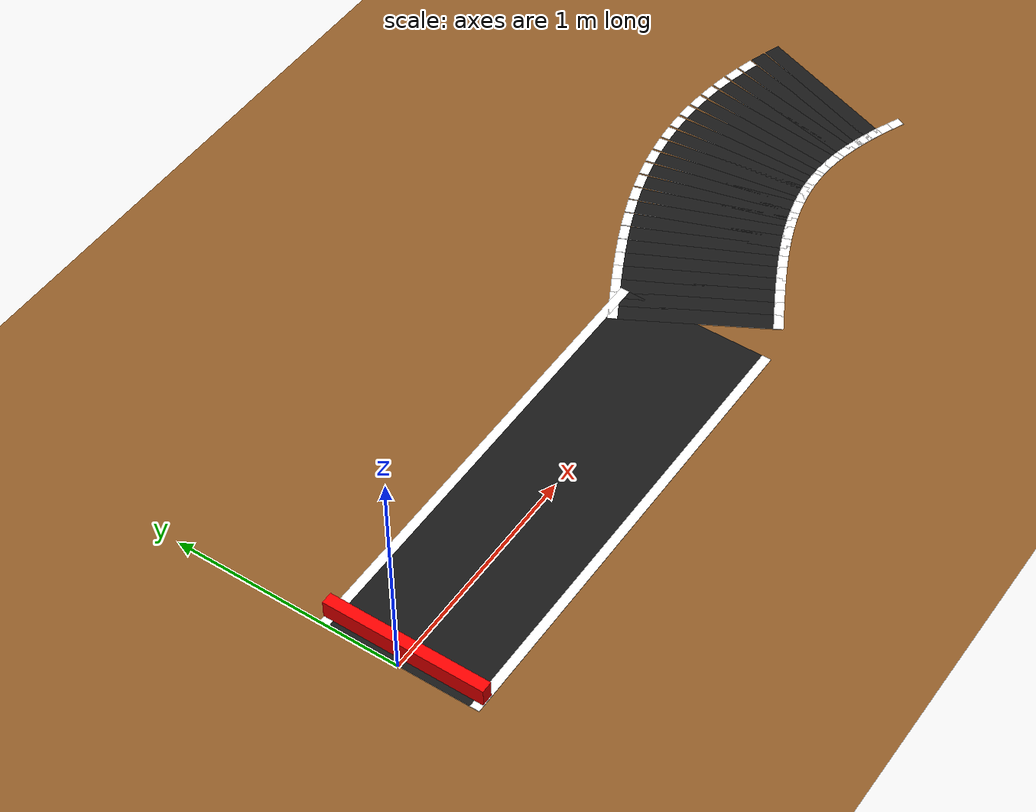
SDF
<sdf version="1.9">
 <world name="lka_world">
  <model name="ground_plane">
   <static>true</static>
   <link name="link">
    <collision name="col">
     <geometry><plane><normal>0 0 1</normal><size>100 100</size></plane></geometry>
     <surface><friction><ode><mu>0.8</mu><mu2>0.8</mu2></ode></friction></surface>
    </collision>
    <visual name="vis">
     <geometry><plane><normal>0 0 1</normal><size>100 100</size></plane></geometry>
     <material><ambient>0.45 0.28 0.10 1</ambient><diffuse>0.55 0.35 0.15 1</diffuse></material>
    </visual>
   </link>
  </model>
  <model name="s1_road">
   <static>true</static>
   <pose>1.000000 0.000000 0.001000 0.000000 0.000000 0.000000</pose>
   <link name="link">
    <collision name="col">
     <geometry><box><size>2.000000 0.700000 0.002000</size></box></geometry>
     <surface><friction><ode><mu>1.0</mu><mu2>1.0</mu2></ode></friction></surface>
    </collision>
    <visual name="vis">
     <geometry><box><size>2.000000 0.700000 0.002000</size></box></geometry>
     <material><ambient>0.06 0.06 0.06 1</ambient><diffuse>0.09 0.09 0.09 1</diffuse></material>
    </visual>
   </link>
  </model>
  <model name="s1_left">
   <static>true</static>
   <pose>1.000000 0.330000 0.002000 0.000000 0.000000 0.000000</pose>
   <link name="link">
    <collision name="col">
     <geometry><box><size>2.000000 0.040000 0.003000</size></box></geometry>
     <surface><friction><ode><mu>1.0</mu><mu2>1.0</mu2></ode></friction></surface>
    </collision>
    <visual name="vis">
     <geometry><box><size>2.000000 0.040000 0.003000</size></box></geometry>
     <material><ambient>1.0 1.0 1.0 1</ambient><diffuse>1.0 1.0 1.0 1</diffuse></material>
    </visual>
   </link>
  </model>
  <model name="s1_right">
   <static>true</static>
   <pose>1.000000 -0.330000 0.002000 0.000000 0.000000 0.000000</pose>
   <link name="link">
    <collision name="col">
     <geometry><box><size>2.000000 0.040000 0.003000</size></box></geometry>
     <surface><friction><ode><mu>1.0</mu><mu2>1.0</mu2></ode></friction></surface>
    </collision>
    <visual name="vis">
     <geometry><box><size>2.000000 0.040000 0.003000</size></box></geometry>
     <material><ambient>1.0 1.0 1.0 1</ambient><diffuse>1.0 1.0 1.0 1</diffuse></material>
    </visual>
   </link>
  </model>
  <model name="c1_road_0">
   <static>true</static>
   <pose>2.031250 0.017174 0.001000 0.000000 0.000000 0.502158</pose>
   <link name="link">
    <collision name="col">
     <geometry><box><size>0.077296 0.700000 0.002000</size></box></geometry>
     <surface><friction><ode><mu>1.0</mu><mu2>1.0</mu2></ode></friction></surface>
    </collision>
    <visual name="vis">
     <geometry><box><size>0.077296 0.700000 0.002000</size></box></geometry>
     <material><ambient>0.06 0.06 0.06 1</ambient><diffuse>0.09 0.09 0.09 1</diffuse></material>
    </visual>
   </link>
  </model>
  <model name="c1_left_0">
   <static>true</static>
   <pose>1.872415 0.306434 0.002000 0.000000 0.000000 0.502158</pose>
   <link name="link">
    <collision name="col">
     <geometry><box><size>0.077296 0.040000 0.003000</size></box></geometry>
     <surface><friction><ode><mu>1.0</mu><mu2>1.0</mu2></ode></friction></surface>
    </collision>
    <visual name="vis">
     <geometry><box><size>0.077296 0.040000 0.003000</size></box></geometry>
     <material><ambient>1.0 1.0 1.0 1</ambient><diffuse>1.0 1.0 1.0 1</diffuse></material>
    </visual>
   </link>
  </model>
  <model name="c1_right_0">
   <static>true</static>
   <pose>2.190085 -0.272086 0.002000 0.000000 0.000000 0.502158</pose>
   <link name="link">
    <collision name="col">
     <geometry><box><size>0.077296 0.040000 0.003000</size></box></geometry>
     <surface><friction><ode><mu>1.0</mu><mu2>1.0</mu2></ode></friction></surface>
    </collision>
    <visual name="vis">
     <geometry><box><size>0.077296 0.040000 0.003000</size></box></geometry>
     <material><ambient>1.0 1.0 1.0 1</ambient><diffuse>1.0 1.0 1.0 1</diffuse></material>
    </visual>
   </link>
  </model>
  <model name="c1_road_1">
   <static>true</static>
   <pose>2.093750 0.051356 0.001000 0.000000 0.000000 0.498086</pose>
   <link name="link">
    <collision name="col">
     <geometry><box><size>0.077138 0.700000 0.002000</size></box></geometry>
     <surface><friction><ode><mu>1.0</mu><mu2>1.0</mu2></ode></friction></surface>
    </collision>
    <visual name="vis">
     <geometry><box><size>0.077138 0.700000 0.002000</size></box></geometry>
     <material><ambient>0.06 0.06 0.06 1</ambient><diffuse>0.09 0.09 0.09 1</diffuse></material>
    </visual>
   </link>
  </model>
  <model name="c1_left_1">
   <static>true</static>
   <pose>1.936094 0.341260 0.002000 0.000000 0.000000 0.498086</pose>
   <link name="link">
    <collision name="col">
     <geometry><box><size>0.077138 0.040000 0.003000</size></box></geometry>
     <surface><friction><ode><mu>1.0</mu><mu2>1.0</mu2></ode></friction></surface>
    </collision>
    <visual name="vis">
     <geometry><box><size>0.077138 0.040000 0.003000</size></box></geometry>
     <material><ambient>1.0 1.0 1.0 1</ambient><diffuse>1.0 1.0 1.0 1</diffuse></material>
    </visual>
   </link>
  </model>
  <model name="c1_right_1">
   <static>true</static>
   <pose>2.251406 -0.238549 0.002000 0.000000 0.000000 0.498086</pose>
   <link name="link">
    <collision name="col">
     <geometry><box><size>0.077138 0.040000 0.003000</size></box></geometry>
     <surface><friction><ode><mu>1.0</mu><mu2>1.0</mu2></ode></friction></surface>
    </collision>
    <visual name="vis">
     <geometry><box><size>0.077138 0.040000 0.003000</size></box></geometry>
     <material><ambient>1.0 1.0 1.0 1</ambient><diffuse>1.0 1.0 1.0 1</diffuse></material>
    </visual>
   </link>
  </model>
  <model name="c1_road_2">
   <static>true</static>
   <pose>2.156250 0.085043 0.001000 0.000000 0.000000 0.489927</pose>
   <link name="link">
    <collision name="col">
     <geometry><box><size>0.076826 0.700000 0.002000</size></box></geometry>
     <surface><friction><ode><mu>1.0</mu><mu2>1.0</mu2></ode></friction></surface>
    </collision>
    <visual name="vis">
     <geometry><box><size>0.076826 0.700000 0.002000</size></box></geometry>
     <material><ambient>0.06 0.06 0.06 1</ambient><diffuse>0.09 0.09 0.09 1</diffuse></material>
    </visual>
   </link>
  </model>
  <model name="c1_left_2">
   <static>true</static>
   <pose>2.000965 0.376224 0.002000 0.000000 0.000000 0.489927</pose>
   <link name="link">
    <collision name="col">
     <geometry><box><size>0.076826 0.040000 0.003000</size></box></geometry>
     <surface><friction><ode><mu>1.0</mu><mu2>1.0</mu2></ode></friction></surface>
    </collision>
    <visual name="vis">
     <geometry><box><size>0.076826 0.040000 0.003000</size></box></geometry>
     <material><ambient>1.0 1.0 1.0 1</ambient><diffuse>1.0 1.0 1.0 1</diffuse></material>
    </visual>
   </link>
  </model>
  <model name="c1_right_2">
   <static>true</static>
   <pose>2.311535 -0.206138 0.002000 0.000000 0.000000 0.489927</pose>
   <link name="link">
    <collision name="col">
     <geometry><box><size>0.076826 0.040000 0.003000</size></box></geometry>
     <surface><friction><ode><mu>1.0</mu><mu2>1.0</mu2></ode></friction></surface>
    </collision>
    <visual name="vis">
     <geometry><box><size>0.076826 0.040000 0.003000</size></box></geometry>
     <material><ambient>1.0 1.0 1.0 1</ambient><diffuse>1.0 1.0 1.0 1</diffuse></material>
    </visual>
   </link>
  </model>
  <model name="c1_road_3">
   <static>true</static>
   <pose>2.218750 0.117911 0.001000 0.000000 0.000000 0.477654</pose>
   <link name="link">
    <collision name="col">
     <geometry><box><size>0.076371 0.700000 0.002000</size></box></geometry>
     <surface><friction><ode><mu>1.0</mu><mu2>1.0</mu2></ode></friction></surface>
    </collision>
    <visual name="vis">
     <geometry><box><size>0.076371 0.700000 0.002000</size></box></geometry>
     <material><ambient>0.06 0.06 0.06 1</ambient><diffuse>0.09 0.09 0.09 1</diffuse></material>
    </visual>
   </link>
  </model>
  <model name="c1_left_3">
   <static>true</static>
   <pose>2.067050 0.410976 0.002000 0.000000 0.000000 0.477654</pose>
   <link name="link">
    <collision name="col">
     <geometry><box><size>0.076371 0.040000 0.003000</size></box></geometry>
     <surface><friction><ode><mu>1.0</mu><mu2>1.0</mu2></ode></friction></surface>
    </collision>
    <visual name="vis">
     <geometry><box><size>0.076371 0.040000 0.003000</size></box></geometry>
     <material><ambient>1.0 1.0 1.0 1</ambient><diffuse>1.0 1.0 1.0 1</diffuse></material>
    </visual>
   </link>
  </model>
  <model name="c1_right_3">
   <static>true</static>
   <pose>2.370450 -0.175154 0.002000 0.000000 0.000000 0.477654</pose>
   <link name="link">
    <collision name="col">
     <geometry><box><size>0.076371 0.040000 0.003000</size></box></geometry>
     <surface><friction><ode><mu>1.0</mu><mu2>1.0</mu2></ode></friction></surface>
    </collision>
    <visual name="vis">
     <geometry><box><size>0.076371 0.040000 0.003000</size></box></geometry>
     <material><ambient>1.0 1.0 1.0 1</ambient><diffuse>1.0 1.0 1.0 1</diffuse></material>
    </visual>
   </link>
  </model>
  <model name="c1_road_4">
   <static>true</static>
   <pose>2.281250 0.149644 0.001000 0.000000 0.000000 0.461234</pose>
   <link name="link">
    <collision name="col">
     <geometry><box><size>0.075788 0.700000 0.002000</size></box></geometry>
     <surface><friction><ode><mu>1.0</mu><mu2>1.0</mu2></ode></friction></surface>
    </collision>
    <visual name="vis">
     <geometry><box><size>0.075788 0.700000 0.002000</size></box></geometry>
     <material><ambient>0.06 0.06 0.06 1</ambient><diffuse>0.09 0.09 0.09 1</diffuse></material>
    </visual>
   </link>
  </model>
  <model name="c1_left_4">
   <static>true</static>
   <pose>2.134382 0.445161 0.002000 0.000000 0.000000 0.461234</pose>
   <link name="link">
    <collision name="col">
     <geometry><box><size>0.075788 0.040000 0.003000</size></box></geometry>
     <surface><friction><ode><mu>1.0</mu><mu2>1.0</mu2></ode></friction></surface>
    </collision>
    <visual name="vis">
     <geometry><box><size>0.075788 0.040000 0.003000</size></box></geometry>
     <material><ambient>1.0 1.0 1.0 1</ambient><diffuse>1.0 1.0 1.0 1</diffuse></material>
    </visual>
   </link>
  </model>
  <model name="c1_right_4">
   <static>true</static>
   <pose>2.428118 -0.145872 0.002000 0.000000 0.000000 0.461234</pose>
   <link name="link">
    <collision name="col">
     <geometry><box><size>0.075788 0.040000 0.003000</size></box></geometry>
     <surface><friction><ode><mu>1.0</mu><mu2>1.0</mu2></ode></friction></surface>
    </collision>
    <visual name="vis">
     <geometry><box><size>0.075788 0.040000 0.003000</size></box></geometry>
     <material><ambient>1.0 1.0 1.0 1</ambient><diffuse>1.0 1.0 1.0 1</diffuse></material>
    </visual>
   </link>
  </model>
  <model name="c1_road_5">
   <static>true</static>
   <pose>2.343750 0.179936 0.001000 0.000000 0.000000 0.440632</pose>
   <link name="link">
    <collision name="col">
     <geometry><box><size>0.075095 0.700000 0.002000</size></box></geometry>
     <surface><friction><ode><mu>1.0</mu><mu2>1.0</mu2></ode></friction></surface>
    </collision>
    <visual name="vis">
     <geometry><box><size>0.075095 0.700000 0.002000</size></box></geometry>
     <material><ambient>0.06 0.06 0.06 1</ambient><diffuse>0.09 0.09 0.09 1</diffuse></material>
    </visual>
   </link>
  </model>
  <model name="c1_left_5">
   <static>true</static>
   <pose>2.203001 0.478415 0.002000 0.000000 0.000000 0.440632</pose>
   <link name="link">
    <collision name="col">
     <geometry><box><size>0.075095 0.040000 0.003000</size></box></geometry>
     <surface><friction><ode><mu>1.0</mu><mu2>1.0</mu2></ode></friction></surface>
    </collision>
    <visual name="vis">
     <geometry><box><size>0.075095 0.040000 0.003000</size></box></geometry>
     <material><ambient>1.0 1.0 1.0 1</ambient><diffuse>1.0 1.0 1.0 1</diffuse></material>
    </visual>
   </link>
  </model>
  <model name="c1_right_5">
   <static>true</static>
   <pose>2.484499 -0.118543 0.002000 0.000000 0.000000 0.440632</pose>
   <link name="link">
    <collision name="col">
     <geometry><box><size>0.075095 0.040000 0.003000</size></box></geometry>
     <surface><friction><ode><mu>1.0</mu><mu2>1.0</mu2></ode></friction></surface>
    </collision>
    <visual name="vis">
     <geometry><box><size>0.075095 0.040000 0.003000</size></box></geometry>
     <material><ambient>1.0 1.0 1.0 1</ambient><diffuse>1.0 1.0 1.0 1</diffuse></material>
    </visual>
   </link>
  </model>
  <model name="c1_road_6">
   <static>true</static>
   <pose>2.406250 0.208495 0.001000 0.000000 0.000000 0.415829</pose>
   <link name="link">
    <collision name="col">
     <geometry><box><size>0.074318 0.700000 0.002000</size></box></geometry>
     <surface><friction><ode><mu>1.0</mu><mu2>1.0</mu2></ode></friction></surface>
    </collision>
    <visual name="vis">
     <geometry><box><size>0.074318 0.700000 0.002000</size></box></geometry>
     <material><ambient>0.06 0.06 0.06 1</ambient><diffuse>0.09 0.09 0.09 1</diffuse></material>
    </visual>
   </link>
  </model>
  <model name="c1_left_6">
   <static>true</static>
   <pose>2.272947 0.510373 0.002000 0.000000 0.000000 0.415829</pose>
   <link name="link">
    <collision name="col">
     <geometry><box><size>0.074318 0.040000 0.003000</size></box></geometry>
     <surface><friction><ode><mu>1.0</mu><mu2>1.0</mu2></ode></friction></surface>
    </collision>
    <visual name="vis">
     <geometry><box><size>0.074318 0.040000 0.003000</size></box></geometry>
     <material><ambient>1.0 1.0 1.0 1</ambient><diffuse>1.0 1.0 1.0 1</diffuse></material>
    </visual>
   </link>
  </model>
  <model name="c1_right_6">
   <static>true</static>
   <pose>2.539553 -0.093383 0.002000 0.000000 0.000000 0.415829</pose>
   <link name="link">
    <collision name="col">
     <geometry><box><size>0.074318 0.040000 0.003000</size></box></geometry>
     <surface><friction><ode><mu>1.0</mu><mu2>1.0</mu2></ode></friction></surface>
    </collision>
    <visual name="vis">
     <geometry><box><size>0.074318 0.040000 0.003000</size></box></geometry>
     <material><ambient>1.0 1.0 1.0 1</ambient><diffuse>1.0 1.0 1.0 1</diffuse></material>
    </visual>
   </link>
  </model>
  <model name="c1_road_7">
   <static>true</static>
   <pose>2.468750 0.235046 0.001000 0.000000 0.000000 0.386829</pose>
   <link name="link">
    <collision name="col">
     <geometry><box><size>0.073483 0.700000 0.002000</size></box></geometry>
     <surface><friction><ode><mu>1.0</mu><mu2>1.0</mu2></ode></friction></surface>
    </collision>
    <visual name="vis">
     <geometry><box><size>0.073483 0.700000 0.002000</size></box></geometry>
     <material><ambient>0.06 0.06 0.06 1</ambient><diffuse>0.09 0.09 0.09 1</diffuse></material>
    </visual>
   </link>
  </model>
  <model name="c1_left_7">
   <static>true</static>
   <pose>2.344256 0.540662 0.002000 0.000000 0.000000 0.386829</pose>
   <link name="link">
    <collision name="col">
     <geometry><box><size>0.073483 0.040000 0.003000</size></box></geometry>
     <surface><friction><ode><mu>1.0</mu><mu2>1.0</mu2></ode></friction></surface>
    </collision>
    <visual name="vis">
     <geometry><box><size>0.073483 0.040000 0.003000</size></box></geometry>
     <material><ambient>1.0 1.0 1.0 1</ambient><diffuse>1.0 1.0 1.0 1</diffuse></material>
    </visual>
   </link>
  </model>
  <model name="c1_right_7">
   <static>true</static>
   <pose>2.593244 -0.070571 0.002000 0.000000 0.000000 0.386829</pose>
   <link name="link">
    <collision name="col">
     <geometry><box><size>0.073483 0.040000 0.003000</size></box></geometry>
     <surface><friction><ode><mu>1.0</mu><mu2>1.0</mu2></ode></friction></surface>
    </collision>
    <visual name="vis">
     <geometry><box><size>0.073483 0.040000 0.003000</size></box></geometry>
     <material><ambient>1.0 1.0 1.0 1</ambient><diffuse>1.0 1.0 1.0 1</diffuse></material>
    </visual>
   </link>
  </model>
  <model name="c1_road_8">
   <static>true</static>
   <pose>2.531250 0.259333 0.001000 0.000000 0.000000 0.353679</pose>
   <link name="link">
    <collision name="col">
     <geometry><box><size>0.072621 0.700000 0.002000</size></box></geometry>
     <surface><friction><ode><mu>1.0</mu><mu2>1.0</mu2></ode></friction></surface>
    </collision>
    <visual name="vis">
     <geometry><box><size>0.072621 0.700000 0.002000</size></box></geometry>
     <material><ambient>0.06 0.06 0.06 1</ambient><diffuse>0.09 0.09 0.09 1</diffuse></material>
    </visual>
   </link>
  </model>
  <model name="c1_left_8">
   <static>true</static>
   <pose>2.416954 0.568908 0.002000 0.000000 0.000000 0.353679</pose>
   <link name="link">
    <collision name="col">
     <geometry><box><size>0.072621 0.040000 0.003000</size></box></geometry>
     <surface><friction><ode><mu>1.0</mu><mu2>1.0</mu2></ode></friction></surface>
    </collision>
    <visual name="vis">
     <geometry><box><size>0.072621 0.040000 0.003000</size></box></geometry>
     <material><ambient>1.0 1.0 1.0 1</ambient><diffuse>1.0 1.0 1.0 1</diffuse></material>
    </visual>
   </link>
  </model>
  <model name="c1_right_8">
   <static>true</static>
   <pose>2.645546 -0.050242 0.002000 0.000000 0.000000 0.353679</pose>
   <link name="link">
    <collision name="col">
     <geometry><box><size>0.072621 0.040000 0.003000</size></box></geometry>
     <surface><friction><ode><mu>1.0</mu><mu2>1.0</mu2></ode></friction></surface>
    </collision>
    <visual name="vis">
     <geometry><box><size>0.072621 0.040000 0.003000</size></box></geometry>
     <material><ambient>1.0 1.0 1.0 1</ambient><diffuse>1.0 1.0 1.0 1</diffuse></material>
    </visual>
   </link>
  </model>
  <model name="c1_road_9">
   <static>true</static>
   <pose>2.593750 0.281123 0.001000 0.000000 0.000000 0.316489</pose>
   <link name="link">
    <collision name="col">
     <geometry><box><size>0.071764 0.700000 0.002000</size></box></geometry>
     <surface><friction><ode><mu>1.0</mu><mu2>1.0</mu2></ode></friction></surface>
    </collision>
    <visual name="vis">
     <geometry><box><size>0.071764 0.700000 0.002000</size></box></geometry>
     <material><ambient>0.06 0.06 0.06 1</ambient><diffuse>0.09 0.09 0.09 1</diffuse></material>
    </visual>
   </link>
  </model>
  <model name="c1_left_9">
   <static>true</static>
   <pose>2.491043 0.594733 0.002000 0.000000 0.000000 0.316489</pose>
   <link name="link">
    <collision name="col">
     <geometry><box><size>0.071764 0.040000 0.003000</size></box></geometry>
     <surface><friction><ode><mu>1.0</mu><mu2>1.0</mu2></ode></friction></surface>
    </collision>
    <visual name="vis">
     <geometry><box><size>0.071764 0.040000 0.003000</size></box></geometry>
     <material><ambient>1.0 1.0 1.0 1</ambient><diffuse>1.0 1.0 1.0 1</diffuse></material>
    </visual>
   </link>
  </model>
  <model name="c1_right_9">
   <static>true</static>
   <pose>2.696457 -0.032488 0.002000 0.000000 0.000000 0.316489</pose>
   <link name="link">
    <collision name="col">
     <geometry><box><size>0.071764 0.040000 0.003000</size></box></geometry>
     <surface><friction><ode><mu>1.0</mu><mu2>1.0</mu2></ode></friction></surface>
    </collision>
    <visual name="vis">
     <geometry><box><size>0.071764 0.040000 0.003000</size></box></geometry>
     <material><ambient>1.0 1.0 1.0 1</ambient><diffuse>1.0 1.0 1.0 1</diffuse></material>
    </visual>
   </link>
  </model>
  <model name="c1_road_10">
   <static>true</static>
   <pose>2.656250 0.300205 0.001000 0.000000 0.000000 0.275453</pose>
   <link name="link">
    <collision name="col">
     <geometry><box><size>0.070947 0.700000 0.002000</size></box></geometry>
     <surface><friction><ode><mu>1.0</mu><mu2>1.0</mu2></ode></friction></surface>
    </collision>
    <visual name="vis">
     <geometry><box><size>0.070947 0.700000 0.002000</size></box></geometry>
     <material><ambient>0.06 0.06 0.06 1</ambient><diffuse>0.09 0.09 0.09 1</diffuse></material>
    </visual>
   </link>
  </model>
  <model name="c1_left_10">
   <static>true</static>
   <pose>2.566496 0.617765 0.002000 0.000000 0.000000 0.275453</pose>
   <link name="link">
    <collision name="col">
     <geometry><box><size>0.070947 0.040000 0.003000</size></box></geometry>
     <surface><friction><ode><mu>1.0</mu><mu2>1.0</mu2></ode></friction></surface>
    </collision>
    <visual name="vis">
     <geometry><box><size>0.070947 0.040000 0.003000</size></box></geometry>
     <material><ambient>1.0 1.0 1.0 1</ambient><diffuse>1.0 1.0 1.0 1</diffuse></material>
    </visual>
   </link>
  </model>
  <model name="c1_right_10">
   <static>true</static>
   <pose>2.746004 -0.017355 0.002000 0.000000 0.000000 0.275453</pose>
   <link name="link">
    <collision name="col">
     <geometry><box><size>0.070947 0.040000 0.003000</size></box></geometry>
     <surface><friction><ode><mu>1.0</mu><mu2>1.0</mu2></ode></friction></surface>
    </collision>
    <visual name="vis">
     <geometry><box><size>0.070947 0.040000 0.003000</size></box></geometry>
     <material><ambient>1.0 1.0 1.0 1</ambient><diffuse>1.0 1.0 1.0 1</diffuse></material>
    </visual>
   </link>
  </model>
  <model name="c1_road_11">
   <static>true</static>
   <pose>2.718750 0.316396 0.001000 0.000000 0.000000 0.230866</pose>
   <link name="link">
    <collision name="col">
     <geometry><box><size>0.070202 0.700000 0.002000</size></box></geometry>
     <surface><friction><ode><mu>1.0</mu><mu2>1.0</mu2></ode></friction></surface>
    </collision>
    <visual name="vis">
     <geometry><box><size>0.070202 0.700000 0.002000</size></box></geometry>
     <material><ambient>0.06 0.06 0.06 1</ambient><diffuse>0.09 0.09 0.09 1</diffuse></material>
    </visual>
   </link>
  </model>
  <model name="c1_left_11">
   <static>true</static>
   <pose>2.643239 0.637641 0.002000 0.000000 0.000000 0.230866</pose>
   <link name="link">
    <collision name="col">
     <geometry><box><size>0.070202 0.040000 0.003000</size></box></geometry>
     <surface><friction><ode><mu>1.0</mu><mu2>1.0</mu2></ode></friction></surface>
    </collision>
    <visual name="vis">
     <geometry><box><size>0.070202 0.040000 0.003000</size></box></geometry>
     <material><ambient>1.0 1.0 1.0 1</ambient><diffuse>1.0 1.0 1.0 1</diffuse></material>
    </visual>
   </link>
  </model>
  <model name="c1_right_11">
   <static>true</static>
   <pose>2.794261 -0.004848 0.002000 0.000000 0.000000 0.230866</pose>
   <link name="link">
    <collision name="col">
     <geometry><box><size>0.070202 0.040000 0.003000</size></box></geometry>
     <surface><friction><ode><mu>1.0</mu><mu2>1.0</mu2></ode></friction></surface>
    </collision>
    <visual name="vis">
     <geometry><box><size>0.070202 0.040000 0.003000</size></box></geometry>
     <material><ambient>1.0 1.0 1.0 1</ambient><diffuse>1.0 1.0 1.0 1</diffuse></material>
    </visual>
   </link>
  </model>
  <model name="c1_road_12">
   <static>true</static>
   <pose>2.781250 0.329540 0.001000 0.000000 0.000000 0.183137</pose>
   <link name="link">
    <collision name="col">
     <geometry><box><size>0.069562 0.700000 0.002000</size></box></geometry>
     <surface><friction><ode><mu>1.0</mu><mu2>1.0</mu2></ode></friction></surface>
    </collision>
    <visual name="vis">
     <geometry><box><size>0.069562 0.700000 0.002000</size></box></geometry>
     <material><ambient>0.06 0.06 0.06 1</ambient><diffuse>0.09 0.09 0.09 1</diffuse></material>
    </visual>
   </link>
  </model>
  <model name="c1_left_12">
   <static>true</static>
   <pose>2.721152 0.654022 0.002000 0.000000 0.000000 0.183137</pose>
   <link name="link">
    <collision name="col">
     <geometry><box><size>0.069562 0.040000 0.003000</size></box></geometry>
     <surface><friction><ode><mu>1.0</mu><mu2>1.0</mu2></ode></friction></surface>
    </collision>
    <visual name="vis">
     <geometry><box><size>0.069562 0.040000 0.003000</size></box></geometry>
     <material><ambient>1.0 1.0 1.0 1</ambient><diffuse>1.0 1.0 1.0 1</diffuse></material>
    </visual>
   </link>
  </model>
  <model name="c1_right_12">
   <static>true</static>
   <pose>2.841348 0.005059 0.002000 0.000000 0.000000 0.183137</pose>
   <link name="link">
    <collision name="col">
     <geometry><box><size>0.069562 0.040000 0.003000</size></box></geometry>
     <surface><friction><ode><mu>1.0</mu><mu2>1.0</mu2></ode></friction></surface>
    </collision>
    <visual name="vis">
     <geometry><box><size>0.069562 0.040000 0.003000</size></box></geometry>
     <material><ambient>1.0 1.0 1.0 1</ambient><diffuse>1.0 1.0 1.0 1</diffuse></material>
    </visual>
   </link>
  </model>
  <model name="c1_road_13">
   <static>true</static>
   <pose>2.843750 0.339511 0.001000 0.000000 0.000000 0.132797</pose>
   <link name="link">
    <collision name="col">
     <geometry><box><size>0.069055 0.700000 0.002000</size></box></geometry>
     <surface><friction><ode><mu>1.0</mu><mu2>1.0</mu2></ode></friction></surface>
    </collision>
    <visual name="vis">
     <geometry><box><size>0.069055 0.700000 0.002000</size></box></geometry>
     <material><ambient>0.06 0.06 0.06 1</ambient><diffuse>0.09 0.09 0.09 1</diffuse></material>
    </visual>
   </link>
  </model>
  <model name="c1_left_13">
   <static>true</static>
   <pose>2.800056 0.666605 0.002000 0.000000 0.000000 0.132797</pose>
   <link name="link">
    <collision name="col">
     <geometry><box><size>0.069055 0.040000 0.003000</size></box></geometry>
     <surface><friction><ode><mu>1.0</mu><mu2>1.0</mu2></ode></friction></surface>
    </collision>
    <visual name="vis">
     <geometry><box><size>0.069055 0.040000 0.003000</size></box></geometry>
     <material><ambient>1.0 1.0 1.0 1</ambient><diffuse>1.0 1.0 1.0 1</diffuse></material>
    </visual>
   </link>
  </model>
  <model name="c1_right_13">
   <static>true</static>
   <pose>2.887444 0.012416 0.002000 0.000000 0.000000 0.132797</pose>
   <link name="link">
    <collision name="col">
     <geometry><box><size>0.069055 0.040000 0.003000</size></box></geometry>
     <surface><friction><ode><mu>1.0</mu><mu2>1.0</mu2></ode></friction></surface>
    </collision>
    <visual name="vis">
     <geometry><box><size>0.069055 0.040000 0.003000</size></box></geometry>
     <material><ambient>1.0 1.0 1.0 1</ambient><diffuse>1.0 1.0 1.0 1</diffuse></material>
    </visual>
   </link>
  </model>
  <model name="c1_road_14">
   <static>true</static>
   <pose>2.906250 0.346212 0.001000 0.000000 0.000000 0.080494</pose>
   <link name="link">
    <collision name="col">
     <geometry><box><size>0.068703 0.700000 0.002000</size></box></geometry>
     <surface><friction><ode><mu>1.0</mu><mu2>1.0</mu2></ode></friction></surface>
    </collision>
    <visual name="vis">
     <geometry><box><size>0.068703 0.700000 0.002000</size></box></geometry>
     <material><ambient>0.06 0.06 0.06 1</ambient><diffuse>0.09 0.09 0.09 1</diffuse></material>
    </visual>
   </link>
  </model>
  <model name="c1_left_14">
   <static>true</static>
   <pose>2.879716 0.675143 0.002000 0.000000 0.000000 0.080494</pose>
   <link name="link">
    <collision name="col">
     <geometry><box><size>0.068703 0.040000 0.003000</size></box></geometry>
     <surface><friction><ode><mu>1.0</mu><mu2>1.0</mu2></ode></friction></surface>
    </collision>
    <visual name="vis">
     <geometry><box><size>0.068703 0.040000 0.003000</size></box></geometry>
     <material><ambient>1.0 1.0 1.0 1</ambient><diffuse>1.0 1.0 1.0 1</diffuse></material>
    </visual>
   </link>
  </model>
  <model name="c1_right_14">
   <static>true</static>
   <pose>2.932784 0.017280 0.002000 0.000000 0.000000 0.080494</pose>
   <link name="link">
    <collision name="col">
     <geometry><box><size>0.068703 0.040000 0.003000</size></box></geometry>
     <surface><friction><ode><mu>1.0</mu><mu2>1.0</mu2></ode></friction></surface>
    </collision>
    <visual name="vis">
     <geometry><box><size>0.068703 0.040000 0.003000</size></box></geometry>
     <material><ambient>1.0 1.0 1.0 1</ambient><diffuse>1.0 1.0 1.0 1</diffuse></material>
    </visual>
   </link>
  </model>
  <model name="c1_road_15">
   <static>true</static>
   <pose>2.968750 0.349578 0.001000 0.000000 0.000000 0.026969</pose>
   <link name="link">
    <collision name="col">
     <geometry><box><size>0.068523 0.700000 0.002000</size></box></geometry>
     <surface><friction><ode><mu>1.0</mu><mu2>1.0</mu2></ode></friction></surface>
    </collision>
    <visual name="vis">
     <geometry><box><size>0.068523 0.700000 0.002000</size></box></geometry>
     <material><ambient>0.06 0.06 0.06 1</ambient><diffuse>0.09 0.09 0.09 1</diffuse></material>
    </visual>
   </link>
  </model>
  <model name="c1_left_15">
   <static>true</static>
   <pose>2.959851 0.679458 0.002000 0.000000 0.000000 0.026969</pose>
   <link name="link">
    <collision name="col">
     <geometry><box><size>0.068523 0.040000 0.003000</size></box></geometry>
     <surface><friction><ode><mu>1.0</mu><mu2>1.0</mu2></ode></friction></surface>
    </collision>
    <visual name="vis">
     <geometry><box><size>0.068523 0.040000 0.003000</size></box></geometry>
     <material><ambient>1.0 1.0 1.0 1</ambient><diffuse>1.0 1.0 1.0 1</diffuse></material>
    </visual>
   </link>
  </model>
  <model name="c1_right_15">
   <static>true</static>
   <pose>2.977649 0.019698 0.002000 0.000000 0.000000 0.026969</pose>
   <link name="link">
    <collision name="col">
     <geometry><box><size>0.068523 0.040000 0.003000</size></box></geometry>
     <surface><friction><ode><mu>1.0</mu><mu2>1.0</mu2></ode></friction></surface>
    </collision>
    <visual name="vis">
     <geometry><box><size>0.068523 0.040000 0.003000</size></box></geometry>
     <material><ambient>1.0 1.0 1.0 1</ambient><diffuse>1.0 1.0 1.0 1</diffuse></material>
    </visual>
   </link>
  </model>
  <model name="c1_road_16">
   <static>true</static>
   <pose>3.031250 0.349578 0.001000 0.000000 0.000000 -0.026969</pose>
   <link name="link">
    <collision name="col">
     <geometry><box><size>0.068523 0.700000 0.002000</size></box></geometry>
     <surface><friction><ode><mu>1.0</mu><mu2>1.0</mu2></ode></friction></surface>
    </collision>
    <visual name="vis">
     <geometry><box><size>0.068523 0.700000 0.002000</size></box></geometry>
     <material><ambient>0.06 0.06 0.06 1</ambient><diffuse>0.09 0.09 0.09 1</diffuse></material>
    </visual>
   </link>
  </model>
  <model name="c1_left_16">
   <static>true</static>
   <pose>3.040149 0.679458 0.002000 0.000000 0.000000 -0.026969</pose>
   <link name="link">
    <collision name="col">
     <geometry><box><size>0.068523 0.040000 0.003000</size></box></geometry>
     <surface><friction><ode><mu>1.0</mu><mu2>1.0</mu2></ode></friction></surface>
    </collision>
    <visual name="vis">
     <geometry><box><size>0.068523 0.040000 0.003000</size></box></geometry>
     <material><ambient>1.0 1.0 1.0 1</ambient><diffuse>1.0 1.0 1.0 1</diffuse></material>
    </visual>
   </link>
  </model>
  <model name="c1_right_16">
   <static>true</static>
   <pose>3.022351 0.019698 0.002000 0.000000 0.000000 -0.026969</pose>
   <link name="link">
    <collision name="col">
     <geometry><box><size>0.068523 0.040000 0.003000</size></box></geometry>
     <surface><friction><ode><mu>1.0</mu><mu2>1.0</mu2></ode></friction></surface>
    </collision>
    <visual name="vis">
     <geometry><box><size>0.068523 0.040000 0.003000</size></box></geometry>
     <material><ambient>1.0 1.0 1.0 1</ambient><diffuse>1.0 1.0 1.0 1</diffuse></material>
    </visual>
   </link>
  </model>
  <model name="c1_road_17">
   <static>true</static>
   <pose>3.093750 0.346212 0.001000 0.000000 0.000000 -0.080494</pose>
   <link name="link">
    <collision name="col">
     <geometry><box><size>0.068703 0.700000 0.002000</size></box></geometry>
     <surface><friction><ode><mu>1.0</mu><mu2>1.0</mu2></ode></friction></surface>
    </collision>
    <visual name="vis">
     <geometry><box><size>0.068703 0.700000 0.002000</size></box></geometry>
     <material><ambient>0.06 0.06 0.06 1</ambient><diffuse>0.09 0.09 0.09 1</diffuse></material>
    </visual>
   </link>
  </model>
  <model name="c1_left_17">
   <static>true</static>
   <pose>3.120284 0.675143 0.002000 0.000000 0.000000 -0.080494</pose>
   <link name="link">
    <collision name="col">
     <geometry><box><size>0.068703 0.040000 0.003000</size></box></geometry>
     <surface><friction><ode><mu>1.0</mu><mu2>1.0</mu2></ode></friction></surface>
    </collision>
    <visual name="vis">
     <geometry><box><size>0.068703 0.040000 0.003000</size></box></geometry>
     <material><ambient>1.0 1.0 1.0 1</ambient><diffuse>1.0 1.0 1.0 1</diffuse></material>
    </visual>
   </link>
  </model>
  <model name="c1_right_17">
   <static>true</static>
   <pose>3.067216 0.017280 0.002000 0.000000 0.000000 -0.080494</pose>
   <link name="link">
    <collision name="col">
     <geometry><box><size>0.068703 0.040000 0.003000</size></box></geometry>
     <surface><friction><ode><mu>1.0</mu><mu2>1.0</mu2></ode></friction></surface>
    </collision>
    <visual name="vis">
     <geometry><box><size>0.068703 0.040000 0.003000</size></box></geometry>
     <material><ambient>1.0 1.0 1.0 1</ambient><diffuse>1.0 1.0 1.0 1</diffuse></material>
    </visual>
   </link>
  </model>
  <model name="c1_road_18">
   <static>true</static>
   <pose>3.156250 0.339511 0.001000 0.000000 0.000000 -0.132797</pose>
   <link name="link">
    <collision name="col">
     <geometry><box><size>0.069055 0.700000 0.002000</size></box></geometry>
     <surface><friction><ode><mu>1.0</mu><mu2>1.0</mu2></ode></friction></surface>
    </collision>
    <visual name="vis">
     <geometry><box><size>0.069055 0.700000 0.002000</size></box></geometry>
     <material><ambient>0.06 0.06 0.06 1</ambient><diffuse>0.09 0.09 0.09 1</diffuse></material>
    </visual>
   </link>
  </model>
  <model name="c1_left_18">
   <static>true</static>
   <pose>3.199944 0.666605 0.002000 0.000000 0.000000 -0.132797</pose>
   <link name="link">
    <collision name="col">
     <geometry><box><size>0.069055 0.040000 0.003000</size></box></geometry>
     <surface><friction><ode><mu>1.0</mu><mu2>1.0</mu2></ode></friction></surface>
    </collision>
    <visual name="vis">
     <geometry><box><size>0.069055 0.040000 0.003000</size></box></geometry>
     <material><ambient>1.0 1.0 1.0 1</ambient><diffuse>1.0 1.0 1.0 1</diffuse></material>
    </visual>
   </link>
  </model>
  <model name="c1_right_18">
   <static>true</static>
   <pose>3.112556 0.012416 0.002000 0.000000 0.000000 -0.132797</pose>
   <link name="link">
    <collision name="col">
     <geometry><box><size>0.069055 0.040000 0.003000</size></box></geometry>
     <surface><friction><ode><mu>1.0</mu><mu2>1.0</mu2></ode></friction></surface>
    </collision>
    <visual name="vis">
     <geometry><box><size>0.069055 0.040000 0.003000</size></box></geometry>
     <material><ambient>1.0 1.0 1.0 1</ambient><diffuse>1.0 1.0 1.0 1</diffuse></material>
    </visual>
   </link>
  </model>
  <model name="c1_road_19">
   <static>true</static>
   <pose>3.218750 0.329540 0.001000 0.000000 0.000000 -0.183137</pose>
   <link name="link">
    <collision name="col">
     <geometry><box><size>0.069562 0.700000 0.002000</size></box></geometry>
     <surface><friction><ode><mu>1.0</mu><mu2>1.0</mu2></ode></friction></surface>
    </collision>
    <visual name="vis">
     <geometry><box><size>0.069562 0.700000 0.002000</size></box></geometry>
     <material><ambient>0.06 0.06 0.06 1</ambient><diffuse>0.09 0.09 0.09 1</diffuse></material>
    </visual>
   </link>
  </model>
  <model name="c1_left_19">
   <static>true</static>
   <pose>3.278848 0.654022 0.002000 0.000000 0.000000 -0.183137</pose>
   <link name="link">
    <collision name="col">
     <geometry><box><size>0.069562 0.040000 0.003000</size></box></geometry>
     <surface><friction><ode><mu>1.0</mu><mu2>1.0</mu2></ode></friction></surface>
    </collision>
    <visual name="vis">
     <geometry><box><size>0.069562 0.040000 0.003000</size></box></geometry>
     <material><ambient>1.0 1.0 1.0 1</ambient><diffuse>1.0 1.0 1.0 1</diffuse></material>
    </visual>
   </link>
  </model>
  <model name="c1_right_19">
   <static>true</static>
   <pose>3.158652 0.005059 0.002000 0.000000 0.000000 -0.183137</pose>
   <link name="link">
    <collision name="col">
     <geometry><box><size>0.069562 0.040000 0.003000</size></box></geometry>
     <surface><friction><ode><mu>1.0</mu><mu2>1.0</mu2></ode></friction></surface>
    </collision>
    <visual name="vis">
     <geometry><box><size>0.069562 0.040000 0.003000</size></box></geometry>
     <material><ambient>1.0 1.0 1.0 1</ambient><diffuse>1.0 1.0 1.0 1</diffuse></material>
    </visual>
   </link>
  </model>
  <model name="c1_road_20">
   <static>true</static>
   <pose>3.281250 0.316396 0.001000 0.000000 0.000000 -0.230866</pose>
   <link name="link">
    <collision name="col">
     <geometry><box><size>0.070202 0.700000 0.002000</size></box></geometry>
     <surface><friction><ode><mu>1.0</mu><mu2>1.0</mu2></ode></friction></surface>
    </collision>
    <visual name="vis">
     <geometry><box><size>0.070202 0.700000 0.002000</size></box></geometry>
     <material><ambient>0.06 0.06 0.06 1</ambient><diffuse>0.09 0.09 0.09 1</diffuse></material>
    </visual>
   </link>
  </model>
  <model name="c1_left_20">
   <static>true</static>
   <pose>3.356761 0.637641 0.002000 0.000000 0.000000 -0.230866</pose>
   <link name="link">
    <collision name="col">
     <geometry><box><size>0.070202 0.040000 0.003000</size></box></geometry>
     <surface><friction><ode><mu>1.0</mu><mu2>1.0</mu2></ode></friction></surface>
    </collision>
    <visual name="vis">
     <geometry><box><size>0.070202 0.040000 0.003000</size></box></geometry>
     <material><ambient>1.0 1.0 1.0 1</ambient><diffuse>1.0 1.0 1.0 1</diffuse></material>
    </visual>
   </link>
  </model>
  <model name="c1_right_20">
   <static>true</static>
   <pose>3.205739 -0.004848 0.002000 0.000000 0.000000 -0.230866</pose>
   <link name="link">
    <collision name="col">
     <geometry><box><size>0.070202 0.040000 0.003000</size></box></geometry>
     <surface><friction><ode><mu>1.0</mu><mu2>1.0</mu2></ode></friction></surface>
    </collision>
    <visual name="vis">
     <geometry><box><size>0.070202 0.040000 0.003000</size></box></geometry>
     <material><ambient>1.0 1.0 1.0 1</ambient><diffuse>1.0 1.0 1.0 1</diffuse></material>
    </visual>
   </link>
  </model>
  <model name="c1_road_21">
   <static>true</static>
   <pose>3.343750 0.300205 0.001000 0.000000 0.000000 -0.275453</pose>
   <link name="link">
    <collision name="col">
     <geometry><box><size>0.070947 0.700000 0.002000</size></box></geometry>
     <surface><friction><ode><mu>1.0</mu><mu2>1.0</mu2></ode></friction></surface>
    </collision>
    <visual name="vis">
     <geometry><box><size>0.070947 0.700000 0.002000</size></box></geometry>
     <material><ambient>0.06 0.06 0.06 1</ambient><diffuse>0.09 0.09 0.09 1</diffuse></material>
    </visual>
   </link>
  </model>
  <model name="c1_left_21">
   <static>true</static>
   <pose>3.433504 0.617765 0.002000 0.000000 0.000000 -0.275453</pose>
   <link name="link">
    <collision name="col">
     <geometry><box><size>0.070947 0.040000 0.003000</size></box></geometry>
     <surface><friction><ode><mu>1.0</mu><mu2>1.0</mu2></ode></friction></surface>
    </collision>
    <visual name="vis">
     <geometry><box><size>0.070947 0.040000 0.003000</size></box></geometry>
     <material><ambient>1.0 1.0 1.0 1</ambient><diffuse>1.0 1.0 1.0 1</diffuse></material>
    </visual>
   </link>
  </model>
  <model name="c1_right_21">
   <static>true</static>
   <pose>3.253996 -0.017355 0.002000 0.000000 0.000000 -0.275453</pose>
   <link name="link">
    <collision name="col">
     <geometry><box><size>0.070947 0.040000 0.003000</size></box></geometry>
     <surface><friction><ode><mu>1.0</mu><mu2>1.0</mu2></ode></friction></surface>
    </collision>
    <visual name="vis">
     <geometry><box><size>0.070947 0.040000 0.003000</size></box></geometry>
     <material><ambient>1.0 1.0 1.0 1</ambient><diffuse>1.0 1.0 1.0 1</diffuse></material>
    </visual>
   </link>
  </model>
  <model name="c1_road_22">
   <static>true</static>
   <pose>3.406250 0.281123 0.001000 0.000000 0.000000 -0.316489</pose>
   <link name="link">
    <collision name="col">
     <geometry><box><size>0.071764 0.700000 0.002000</size></box></geometry>
     <surface><friction><ode><mu>1.0</mu><mu2>1.0</mu2></ode></friction></surface>
    </collision>
    <visual name="vis">
     <geometry><box><size>0.071764 0.700000 0.002000</size></box></geometry>
     <material><ambient>0.06 0.06 0.06 1</ambient><diffuse>0.09 0.09 0.09 1</diffuse></material>
    </visual>
   </link>
  </model>
  <model name="c1_right_22">
   <static>true</static>
   <pose>3.303543 -0.032488 0.002000 0.000000 0.000000 -0.316489</pose>
   <link name="link">
    <collision name="col">
     <geometry><box><size>0.071764 0.040000 0.003000</size></box></geometry>
     <surface><friction><ode><mu>1.0</mu><mu2>1.0</mu2></ode></friction></surface>
    </collision>
    <visual name="vis">
     <geometry><box><size>0.071764 0.040000 0.003000</size></box></geometry>
     <material><ambient>1.0 1.0 1.0 1</ambient><diffuse>1.0 1.0 1.0 1</diffuse></material>
    </visual>
   </link>
  </model>
  <model name="c1_road_23">
   <static>true</static>
   <pose>3.468750 0.259333 0.001000 0.000000 0.000000 -0.353679</pose>
   <link name="link">
    <collision name="col">
     <geometry><box><size>0.072621 0.700000 0.002000</size></box></geometry>
     <surface><friction><ode><mu>1.0</mu><mu2>1.0</mu2></ode></friction></surface>
    </collision>
    <visual name="vis">
     <geometry><box><size>0.072621 0.700000 0.002000</size></box></geometry>
     <material><ambient>0.06 0.06 0.06 1</ambient><diffuse>0.09 0.09 0.09 1</diffuse></material>
    </visual>
   </link>
  </model>
  <model name="c1_right_23">
   <static>true</static>
   <pose>3.354454 -0.050242 0.002000 0.000000 0.000000 -0.353679</pose>
   <link name="link">
    <collision name="col">
     <geometry><box><size>0.072621 0.040000 0.003000</size></box></geometry>
     <surface><friction><ode><mu>1.0</mu><mu2>1.0</mu2></ode></friction></surface>
    </collision>
    <visual name="vis">
     <geometry><box><size>0.072621 0.040000 0.003000</size></box></geometry>
     <material><ambient>1.0 1.0 1.0 1</ambient><diffuse>1.0 1.0 1.0 1</diffuse></material>
    </visual>
   </link>
  </model>
  <model name="c1_right_24">
   <static>true</static>
   <pose>3.406756 -0.070571 0.002000 0.000000 0.000000 -0.386829</pose>
   <link name="link">
    <collision name="col">
     <geometry><box><size>0.073483 0.040000 0.003000</size></box></geometry>
     <surface><friction><ode><mu>1.0</mu><mu2>1.0</mu2></ode></friction></surface>
    </collision>
    <visual name="vis">
     <geometry><box><size>0.073483 0.040000 0.003000</size></box></geometry>
     <material><ambient>1.0 1.0 1.0 1</ambient><diffuse>1.0 1.0 1.0 1</diffuse></material>
    </visual>
   </link>
  </model>
  <model name="c1_right_25">
   <static>true</static>
   <pose>3.460447 -0.093383 0.002000 0.000000 0.000000 -0.415829</pose>
   <link name="link">
    <collision name="col">
     <geometry><box><size>0.074318 0.040000 0.003000</size></box></geometry>
     <surface><friction><ode><mu>1.0</mu><mu2>1.0</mu2></ode></friction></surface>
    </collision>
    <visual name="vis">
     <geometry><box><size>0.074318 0.040000 0.003000</size></box></geometry>
     <material><ambient>1.0 1.0 1.0 1</ambient><diffuse>1.0 1.0 1.0 1</diffuse></material>
    </visual>
   </link>
  </model>
  <model name="start_marker">
   <static>true</static>
   <pose>0.05 0.0 0.05 0 0 0</pose>
   <link name="link">
    <visual name="vis">
     <geometry><box><size>0.05 0.70 0.08</size></box></geometry>
     <material><ambient>0.9 0.0 0.0 1</ambient><diffuse>1.0 0.0 0.0 1</diffuse></material>
    </visual>
   </link>
  </model>
 </world>
</sdf>
